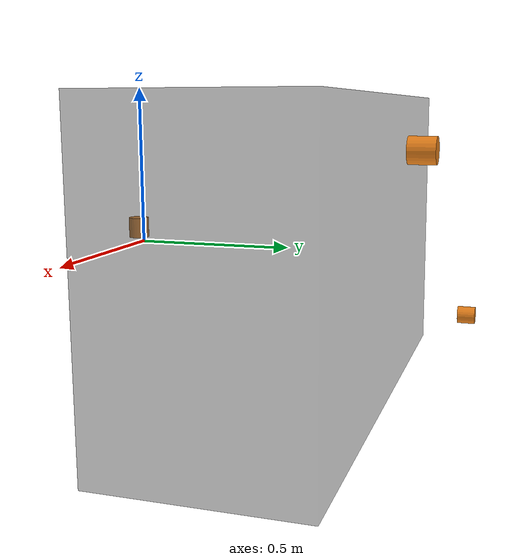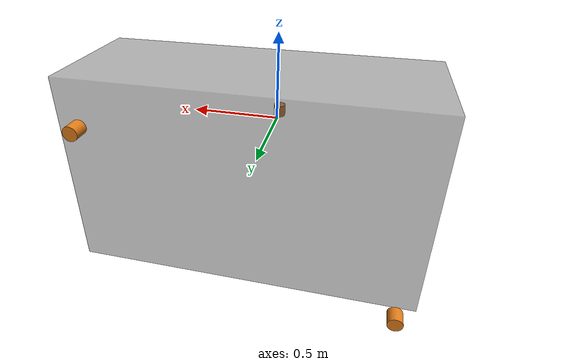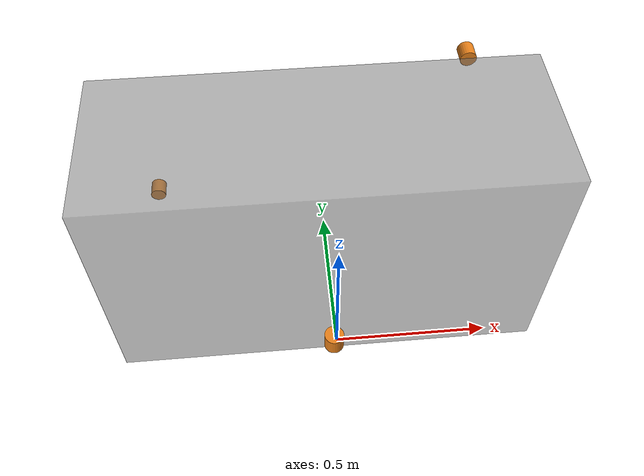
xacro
<?xml version="1.0"?>
<robot xmlns:xacro="http://www.ros.org/wiki/xacro" name="vehicle">

  <!-- ===== 차체 치수 (nav2 footprint 와 같은 실측값) ===== -->
  <xacro:property name="body_length" value="1.62"/>
  <xacro:property name="body_width"  value="0.952"/>
  <xacro:property name="body_height" value="0.60"/>

  <xacro:property name="front_xyz" value="0.697 0.35 -0.18"/>
  <xacro:property name="front_rpy" value="0 0 ${pi/2}"/>

  <xacro:property name="rear_xyz"  value="-0.6 -0.34 -0.18"/>
  <xacro:property name="rear_rpy"  value="0 0 ${-pi/2}"/>

  <xacro:property name="top_xyz"   value="0.011 -0.04412 0.8465"/>
  <xacro:property name="top_rpy"   value="${-pi/2} 0 ${pi}"/>

  <xacro:property name="bf_from_body_xyz" value="0.0 0.82321 0.0"/>
  <xacro:property name="bf_from_body_rpy" value="${-pi/2} 0 ${-pi}"/>

  <material name="grey"><color rgba="0.4 0.4 0.4 0.5"/></material>
  <material name="orange"><color rgba="0.9 0.5 0.1 1.0"/></material>

  <xacro:macro name="mid360" params="name xyz rpy">
    <link name="${name}">
      <visual>
        <geometry><cylinder radius="0.032" length="0.065"/></geometry>
        <material name="orange"/>
      </visual>
    </link>
    <joint name="base_footprint_to_${name}" type="fixed">
      <parent link="base_footprint"/>
      <child  link="${name}"/>
      <origin xyz="${xyz}" rpy="${rpy}"/>
    </joint>
  </xacro:macro>

  <!-- ===== 루트: FAST-LIO 가 내보내는 IMU 프레임 ===== -->
  <link name="body"/>

  <!-- 같은 지점에 대한 별칭. IMU 메시지 시각화용. -->
  <link name="imu_link"/>
  <joint name="body_to_imu_link" type="fixed">
    <parent link="body"/><child link="imu_link"/>
    <origin xyz="0 0 0" rpy="0 0 0"/>
  </joint>

  <!-- ===== 차량 기준점 (지면) ===== -->
  <link name="base_footprint">
    <visual>
      <geometry><box size="${body_length} ${body_width} ${body_height}"/></geometry>
      <origin xyz="0 0 ${body_height/2}"/>
      <material name="grey"/>
    </visual>
  </link>
  <joint name="body_to_base_footprint" type="fixed">
    <parent link="body"/><child link="base_footprint"/>
    <origin xyz="${bf_from_body_xyz}" rpy="${bf_from_body_rpy}"/>
  </joint>

  <!-- 드라이버가 원시 클라우드 header 에 찍는 이름. 병합 전이라 기하학적
       의미는 없고, RViz 가 프레임을 못 찾는 것만 막아준다. -->
  <link name="livox_frame"/>
  <joint name="base_footprint_to_livox_frame" type="fixed">
    <parent link="base_footprint"/><child link="livox_frame"/>
    <origin xyz="0 0 0" rpy="0 0 0"/>
  </joint>

  <!-- ===== 라이다 3대 ===== -->
  <xacro:mid360 name="livox_top"   xyz="${top_xyz}"   rpy="${top_rpy}"/>
  <xacro:mid360 name="livox_front" xyz="${front_xyz}" rpy="${front_rpy}"/>
  <xacro:mid360 name="livox_rear"  xyz="${rear_xyz}"  rpy="${rear_rpy}"/>

</robot>
